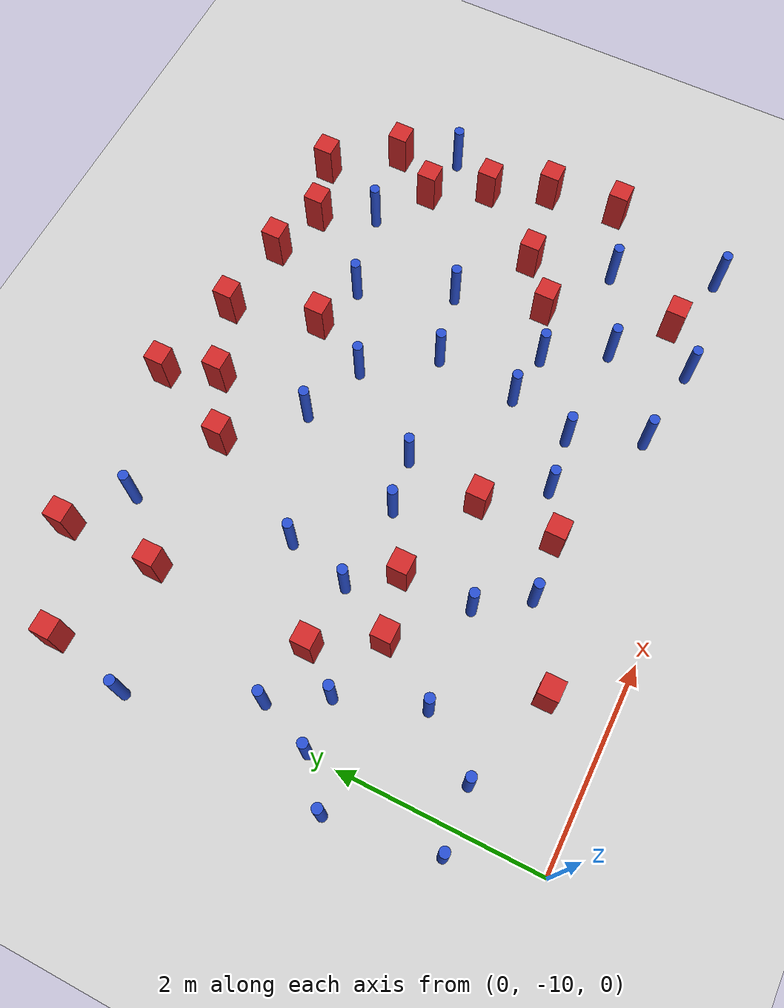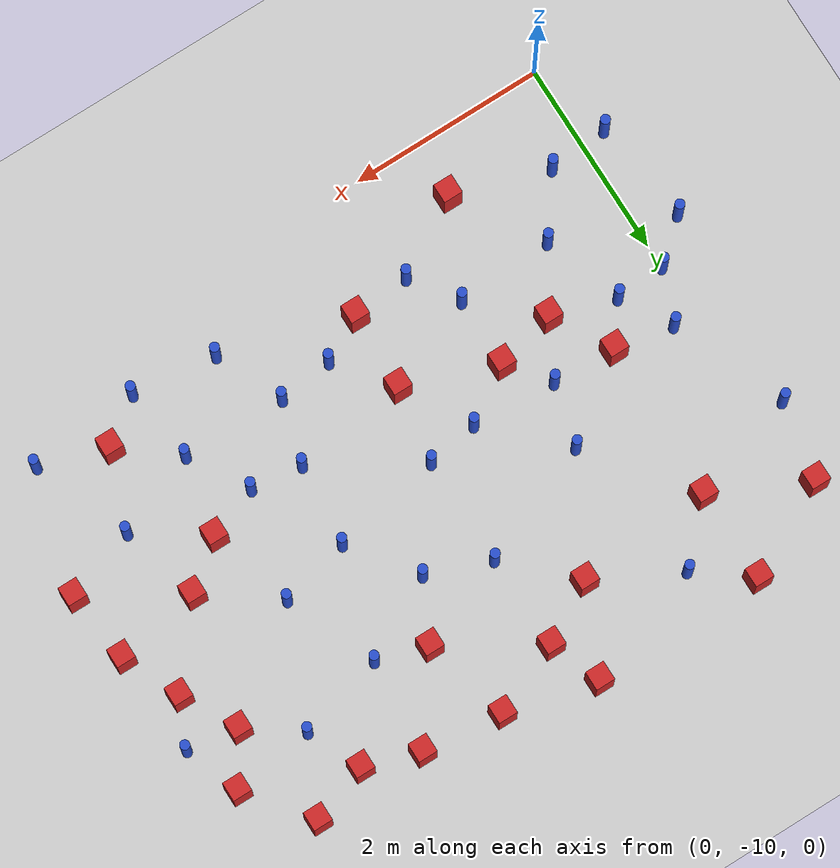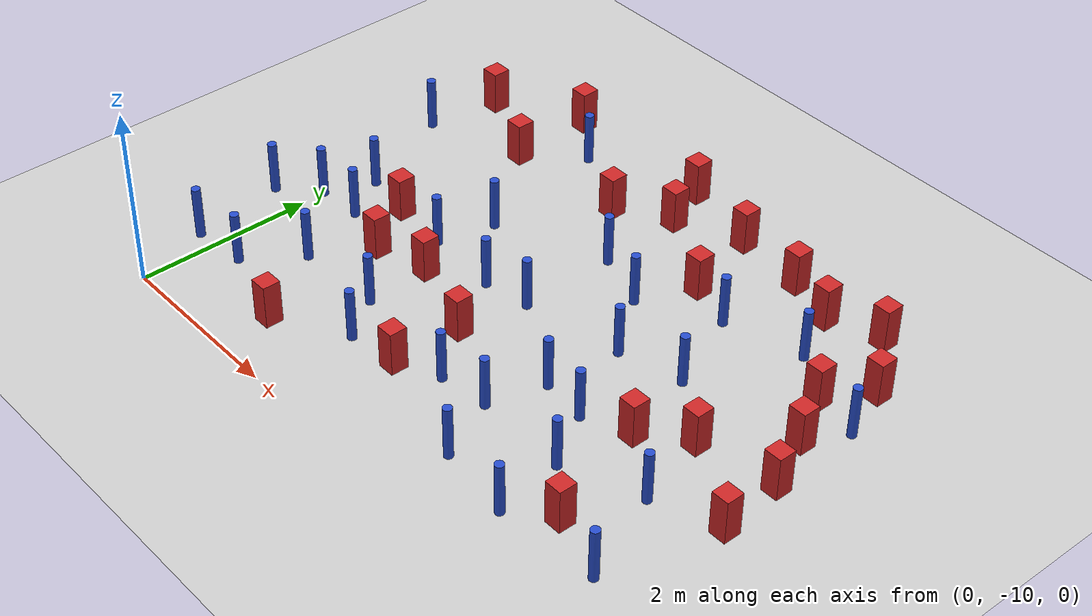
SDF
<sdf version="1.6">
 <world name="default">
  <model name="ground_plane">
   <static>1</static>
   <link name="link">
    <collision name="collision">
     <geometry><plane><normal>0 0 1</normal><size>100 100</size></plane></geometry>
     <surface><friction><ode><mu>100</mu><mu2>50</mu2></ode></friction></surface>
    </collision>
    <visual name="visual">
     <cast_shadows>0</cast_shadows>
     <geometry><plane><normal>0 0 1</normal><size>100 100</size></plane></geometry>
     <material>
      <ambient>1.0 1.0 1.0 1.0</ambient>
      <diffuse>0.8 0.8 0.8 1.0</diffuse>
      <specular>0.01 0.01 0.01 1.000000</specular>
     </material>
    </visual>
   </link>
  </model>
  <model name="square_post_obstacle3">
   <static>true</static>
   <pose>2.2582333432 -5.58475907966 -6.11067671241e-07 -5.50515727128e-06 -8.79689657224e-07 2.37013304536e-05</pose>
   <link name="link">
    <pose>0 0 0.25 0 -0 0</pose>
    <inertial>
     <mass>100</mass>
     <inertia>
      <ixx>0.166667</ixx>
      <ixy>0</ixy>
      <ixz>0</ixz>
      <iyy>0.166667</iyy>
      <iyz>0</iyz>
      <izz>0.166667</izz>
     </inertia>
    </inertial>
    <collision name="collision"><geometry><box><size>.2 .2 .5</size></box></geometry></collision>
    <visual name="visual">
     <geometry><box><size>.2 .2 .5</size></box></geometry>
     <material>
      <script><name>Gazebo/Red</name><uri>file://media/materials/scripts/gazebo.material</uri></script>
     </material>
    </visual>
   </link>
  </model>
  <model name="pole_obstacle9">
   <static>true</static>
   <pose>-0.391706613533 -8.08337775181 -9.47619616065e-06 5.49618799737e-07 2.36310414031e-07 -1.55090534818e-07</pose>
   <link name="link">
    <pose>0 0 0.3 0 -0 0</pose>
    <inertial>
     <mass>1</mass>
     <inertia><ixx>0.145833</ixx><ixy>0</ixy><ixz>0</ixz><iyy>0.145833</iyy><iyz>0</iyz><izz>0.125</izz></inertia>
    </inertial>
    <collision name="collision">
     <geometry><cylinder><radius>0.05</radius><length>.6</length></cylinder></geometry>
    </collision>
    <visual name="visual">
     <geometry><cylinder><radius>0.05</radius><length>.6</length></cylinder></geometry>
     <material>
      <script><name>Gazebo/Blue</name><uri>file://media/materials/scripts/gazebo.material</uri></script>
     </material>
    </visual>
   </link>
  </model>
  <model name="pole_obstacle14">
   <static>true</static>
   <pose>4.04743545266 -9.25883310238 -9.47619616065e-06 5.49618799737e-07 2.36310414062e-07 -1.55090534799e-07</pose>
   <link name="link">
    <pose>0 0 0.3 0 -0 0</pose>
    <inertial>
     <mass>1</mass>
     <inertia><ixx>0.145833</ixx><ixy>0</ixy><ixz>0</ixz><iyy>0.145833</iyy><iyz>0</iyz><izz>0.125</izz></inertia>
    </inertial>
    <collision name="collision">
     <geometry><cylinder><radius>0.05</radius><length>.6</length></cylinder></geometry>
    </collision>
    <visual name="visual">
     <geometry><cylinder><radius>0.05</radius><length>.6</length></cylinder></geometry>
     <material>
      <script><name>Gazebo/Blue</name><uri>file://media/materials/scripts/gazebo.material</uri></script>
     </material>
    </visual>
   </link>
  </model>
  <model name="pole_obstacle17">
   <static>true</static>
   <pose>0.805625796056 -8.5106215009 -9.47619616065e-06 5.49618799737e-07 2.36310414038e-07 -1.55090534813e-07</pose>
   <link name="link">
    <pose>0 0 0.3 0 -0 0</pose>
    <inertial>
     <mass>1</mass>
     <inertia><ixx>0.145833</ixx><ixy>0</ixy><ixz>0</ixz><iyy>0.145833</iyy><iyz>0</iyz><izz>0.125</izz></inertia>
    </inertial>
    <collision name="collision">
     <geometry><cylinder><radius>0.05</radius><length>.6</length></cylinder></geometry>
    </collision>
    <visual name="visual">
     <geometry><cylinder><radius>0.05</radius><length>.6</length></cylinder></geometry>
     <material>
      <script><name>Gazebo/Blue</name><uri>file://media/materials/scripts/gazebo.material</uri></script>
     </material>
    </visual>
   </link>
  </model>
  <model name="square_post_obstacle13">
   <static>true</static>
   <pose>2.64894658065 -4.7162178842 -6.11067671241e-07 -5.50515727128e-06 -8.79689657224e-07 2.37013304536e-05</pose>
   <link name="link">
    <pose>0 0 0.25 0 -0 0</pose>
    <inertial>
     <mass>100</mass>
     <inertia>
      <ixx>0.166667</ixx>
      <ixy>0</ixy>
      <ixz>0</ixz>
      <iyy>0.166667</iyy>
      <iyz>0</iyz>
      <izz>0.166667</izz>
     </inertia>
    </inertial>
    <collision name="collision"><geometry><box><size>.2 .2 .5</size></box></geometry></collision>
    <visual name="visual">
     <geometry><box><size>.2 .2 .5</size></box></geometry>
     <material>
      <script><name>Gazebo/Red</name><uri>file://media/materials/scripts/gazebo.material</uri></script>
     </material>
    </visual>
   </link>
  </model>
  <model name="square_post_obstacle19">
   <static>true</static>
   <pose>4.40538104166 -5.0287908586 -6.11067671241e-07 -5.50515727128e-06 -8.79689657224e-07 2.37013304536e-05</pose>
   <link name="link">
    <pose>0 0 0.25 0 -0 0</pose>
    <inertial>
     <mass>100</mass>
     <inertia>
      <ixx>0.166667</ixx>
      <ixy>0</ixy>
      <ixz>0</ixz>
      <iyy>0.166667</iyy>
      <iyz>0</iyz>
      <izz>0.166667</izz>
     </inertia>
    </inertial>
    <collision name="collision"><geometry><box><size>.2 .2 .5</size></box></geometry></collision>
    <visual name="visual">
     <geometry><box><size>.2 .2 .5</size></box></geometry>
     <material>
      <script><name>Gazebo/Red</name><uri>file://media/materials/scripts/gazebo.material</uri></script>
     </material>
    </visual>
   </link>
  </model>
  <model name="pole_obstacle30">
   <static>true</static>
   <pose>0.0104346098227 -7.73148171372 -9.47619616065e-06 5.49618799737e-07 2.36310414066e-07 -1.55090534798e-07</pose>
   <link name="link">
    <pose>0 0 0.3 0 -0 0</pose>
    <inertial>
     <mass>1</mass>
     <inertia><ixx>0.145833</ixx><ixy>0</ixy><ixz>0</ixz><iyy>0.145833</iyy><iyz>0</iyz><izz>0.125</izz></inertia>
    </inertial>
    <collision name="collision">
     <geometry><cylinder><radius>0.05</radius><length>.6</length></cylinder></geometry>
    </collision>
    <visual name="visual">
     <geometry><cylinder><radius>0.05</radius><length>.6</length></cylinder></geometry>
     <material>
      <script><name>Gazebo/Blue</name><uri>file://media/materials/scripts/gazebo.material</uri></script>
     </material>
    </visual>
   </link>
  </model>
  <model name="pole_obstacle31">
   <static>true</static>
   <pose>2.34227794499 -7.39321426826 -9.47619616065e-06 5.49618799738e-07 2.3631041406e-07 -1.55090534801e-07</pose>
   <link name="link">
    <pose>0 0 0.3 0 -0 0</pose>
    <inertial>
     <mass>1</mass>
     <inertia><ixx>0.145833</ixx><ixy>0</ixy><ixz>0</ixz><iyy>0.145833</iyy><iyz>0</iyz><izz>0.125</izz></inertia>
    </inertial>
    <collision name="collision">
     <geometry><cylinder><radius>0.05</radius><length>.6</length></cylinder></geometry>
    </collision>
    <visual name="visual">
     <geometry><cylinder><radius>0.05</radius><length>.6</length></cylinder></geometry>
     <material>
      <script><name>Gazebo/Blue</name><uri>file://media/materials/scripts/gazebo.material</uri></script>
     </material>
    </visual>
   </link>
  </model>
  <model name="square_post_obstacle24">
   <static>true</static>
   <pose>0.871789693514 -5.68705379357 -6.11067671241e-07 -5.50515727128e-06 -8.79689657224e-07 2.37013304536e-05</pose>
   <link name="link">
    <pose>0 0 0.25 0 -0 0</pose>
    <inertial>
     <mass>100</mass>
     <inertia>
      <ixx>0.166667</ixx>
      <ixy>0</ixy>
      <ixz>0</ixz>
      <iyy>0.166667</iyy>
      <iyz>0</iyz>
      <izz>0.166667</izz>
     </inertia>
    </inertial>
    <collision name="collision"><geometry><box><size>.2 .2 .5</size></box></geometry></collision>
    <visual name="visual">
     <geometry><box><size>.2 .2 .5</size></box></geometry>
     <material>
      <script><name>Gazebo/Red</name><uri>file://media/materials/scripts/gazebo.material</uri></script>
     </material>
    </visual>
   </link>
  </model>
  <model name="pole_obstacle38">
   <static>true</static>
   <pose>4.91052521353 -9.36683698893 -9.47619616065e-06 5.49618799737e-07 2.36310414065e-07 -1.55090534796e-07</pose>
   <link name="link">
    <pose>0 0 0.3 0 -0 0</pose>
    <inertial>
     <mass>1</mass>
     <inertia><ixx>0.145833</ixx><ixy>0</ixy><ixz>0</ixz><iyy>0.145833</iyy><iyz>0</iyz><izz>0.125</izz></inertia>
    </inertial>
    <collision name="collision">
     <geometry><cylinder><radius>0.05</radius><length>.6</length></cylinder></geometry>
    </collision>
    <visual name="visual">
     <geometry><cylinder><radius>0.05</radius><length>.6</length></cylinder></geometry>
     <material>
      <script><name>Gazebo/Blue</name><uri>file://media/materials/scripts/gazebo.material</uri></script>
     </material>
    </visual>
   </link>
  </model>
  <model name="pole_obstacle39">
   <static>true</static>
   <pose>3.51686870457 -6.43644330084 -9.47619616065e-06 5.49618799738e-07 2.3631041406e-07 -1.55090534801e-07</pose>
   <link name="link">
    <pose>0 0 0.3 0 -0 0</pose>
    <inertial>
     <mass>1</mass>
     <inertia><ixx>0.145833</ixx><ixy>0</ixy><ixz>0</ixz><iyy>0.145833</iyy><iyz>0</iyz><izz>0.125</izz></inertia>
    </inertial>
    <collision name="collision">
     <geometry><cylinder><radius>0.05</radius><length>.6</length></cylinder></geometry>
    </collision>
    <visual name="visual">
     <geometry><cylinder><radius>0.05</radius><length>.6</length></cylinder></geometry>
     <material>
      <script><name>Gazebo/Blue</name><uri>file://media/materials/scripts/gazebo.material</uri></script>
     </material>
    </visual>
   </link>
  </model>
  <model name="pole_obstacle44">
   <static>true</static>
   <pose>6.04462200495 -9.25837924738 -9.47619616065e-06 5.49618799737e-07 2.36310414065e-07 -1.55090534796e-07</pose>
   <link name="link">
    <pose>0 0 0.3 0 -0 0</pose>
    <inertial>
     <mass>1</mass>
     <inertia><ixx>0.145833</ixx><ixy>0</ixy><ixz>0</ixz><iyy>0.145833</iyy><iyz>0</iyz><izz>0.125</izz></inertia>
    </inertial>
    <collision name="collision">
     <geometry><cylinder><radius>0.05</radius><length>.6</length></cylinder></geometry>
    </collision>
    <visual name="visual">
     <geometry><cylinder><radius>0.05</radius><length>.6</length></cylinder></geometry>
     <material>
      <script><name>Gazebo/Blue</name><uri>file://media/materials/scripts/gazebo.material</uri></script>
     </material>
    </visual>
   </link>
  </model>
  <model name="pole_obstacle46">
   <static>true</static>
   <pose>3.99751945048 -7.09054645801 -9.47619616065e-06 5.49618799737e-07 2.36310414049e-07 -1.55090534808e-07</pose>
   <link name="link">
    <pose>0 0 0.3 0 -0 0</pose>
    <inertial>
     <mass>1</mass>
     <inertia><ixx>0.145833</ixx><ixy>0</ixy><ixz>0</ixz><iyy>0.145833</iyy><iyz>0</iyz><izz>0.125</izz></inertia>
    </inertial>
    <collision name="collision">
     <geometry><cylinder><radius>0.05</radius><length>.6</length></cylinder></geometry>
    </collision>
    <visual name="visual">
     <geometry><cylinder><radius>0.05</radius><length>.6</length></cylinder></geometry>
     <material>
      <script><name>Gazebo/Blue</name><uri>file://media/materials/scripts/gazebo.material</uri></script>
     </material>
    </visual>
   </link>
  </model>
  <model name="pole_obstacle47">
   <static>true</static>
   <pose>4.79923511579 -8.59081502515 -9.47619616065e-06 5.49618799737e-07 2.36310414065e-07 -1.55090534796e-07</pose>
   <link name="link">
    <pose>0 0 0.3 0 -0 0</pose>
    <inertial>
     <mass>1</mass>
     <inertia><ixx>0.145833</ixx><ixy>0</ixy><ixz>0</ixz><iyy>0.145833</iyy><iyz>0</iyz><izz>0.125</izz></inertia>
    </inertial>
    <collision name="collision">
     <geometry><cylinder><radius>0.05</radius><length>.6</length></cylinder></geometry>
    </collision>
    <visual name="visual">
     <geometry><cylinder><radius>0.05</radius><length>.6</length></cylinder></geometry>
     <material>
      <script><name>Gazebo/Blue</name><uri>file://media/materials/scripts/gazebo.material</uri></script>
     </material>
    </visual>
   </link>
  </model>
  <model name="pole_obstacle55">
   <static>true</static>
   <pose>-0.238329707888 -9.14730622742 -9.47619616065e-06 5.49618799737e-07 2.36310414035e-07 -1.55090534816e-07</pose>
   <link name="link">
    <pose>0 0 0.3 0 -0 0</pose>
    <inertial>
     <mass>1</mass>
     <inertia><ixx>0.145833</ixx><ixy>0</ixy><ixz>0</ixz><iyy>0.145833</iyy><iyz>0</iyz><izz>0.125</izz></inertia>
    </inertial>
    <collision name="collision">
     <geometry><cylinder><radius>0.05</radius><length>.6</length></cylinder></geometry>
    </collision>
    <visual name="visual">
     <geometry><cylinder><radius>0.05</radius><length>.6</length></cylinder></geometry>
     <material>
      <script><name>Gazebo/Blue</name><uri>file://media/materials/scripts/gazebo.material</uri></script>
     </material>
    </visual>
   </link>
  </model>
  <model name="square_post_obstacle43">
   <static>true</static>
   <pose>1.18824249858 -7.89783714019 -6.11067671241e-07 -5.50515727128e-06 -8.79689657224e-07 2.37013304536e-05</pose>
   <link name="link">
    <pose>0 0 0.25 0 -0 0</pose>
    <inertial>
     <mass>100</mass>
     <inertia>
      <ixx>0.166667</ixx>
      <ixy>0</ixy>
      <ixz>0</ixz>
      <iyy>0.166667</iyy>
      <iyz>0</iyz>
      <izz>0.166667</izz>
     </inertia>
    </inertial>
    <collision name="collision"><geometry><box><size>.2 .2 .5</size></box></geometry></collision>
    <visual name="visual">
     <geometry><box><size>.2 .2 .5</size></box></geometry>
     <material>
      <script><name>Gazebo/Red</name><uri>file://media/materials/scripts/gazebo.material</uri></script>
     </material>
    </visual>
   </link>
  </model>
  <model name="pole_obstacle61">
   <static>true</static>
   <pose>2.12692938519 -8.93378575849 -9.4761961606e-06 5.49618799729e-07 2.36310414e-07 -1.55090534824e-07</pose>
   <link name="link">
    <pose>0 0 0.3 0 -0 0</pose>
    <inertial>
     <mass>1</mass>
     <inertia><ixx>0.145833</ixx><ixy>0</ixy><ixz>0</ixz><iyy>0.145833</iyy><iyz>0</iyz><izz>0.125</izz></inertia>
    </inertial>
    <collision name="collision">
     <geometry><cylinder><radius>0.05</radius><length>.6</length></cylinder></geometry>
    </collision>
    <visual name="visual">
     <geometry><cylinder><radius>0.05</radius><length>.6</length></cylinder></geometry>
     <material>
      <script><name>Gazebo/Blue</name><uri>file://media/materials/scripts/gazebo.material</uri></script>
     </material>
    </visual>
   </link>
  </model>
  <model name="square_post_obstacle49">
   <static>true</static>
   <pose>-0.0839355214253 -5.23233863861 -6.11067671241e-07 -5.50515727128e-06 -8.79689657224e-07 2.37013304536e-05</pose>
   <link name="link">
    <pose>0 0 0.25 0 -0 0</pose>
    <inertial>
     <mass>100</mass>
     <inertia>
      <ixx>0.166667</ixx>
      <ixy>0</ixy>
      <ixz>0</ixz>
      <iyy>0.166667</iyy>
      <iyz>0</iyz>
      <izz>0.166667</izz>
     </inertia>
    </inertial>
    <collision name="collision"><geometry><box><size>.2 .2 .5</size></box></geometry></collision>
    <visual name="visual">
     <geometry><box><size>.2 .2 .5</size></box></geometry>
     <material>
      <script><name>Gazebo/Red</name><uri>file://media/materials/scripts/gazebo.material</uri></script>
     </material>
    </visual>
   </link>
  </model>
  <model name="pole_obstacle66">
   <static>true</static>
   <pose>1.64097257661 -6.69781636108 -9.47619616065e-06 5.49618799737e-07 2.36310414061e-07 -1.550905348e-07</pose>
   <link name="link">
    <pose>0 0 0.3 0 -0 0</pose>
    <inertial>
     <mass>1</mass>
     <inertia><ixx>0.145833</ixx><ixy>0</ixy><ixz>0</ixz><iyy>0.145833</iyy><iyz>0</iyz><izz>0.125</izz></inertia>
    </inertial>
    <collision name="collision">
     <geometry><cylinder><radius>0.05</radius><length>.6</length></cylinder></geometry>
    </collision>
    <visual name="visual">
     <geometry><cylinder><radius>0.05</radius><length>.6</length></cylinder></geometry>
     <material>
      <script><name>Gazebo/Blue</name><uri>file://media/materials/scripts/gazebo.material</uri></script>
     </material>
    </visual>
   </link>
  </model>
  <model name="square_post_obstacle55">
   <static>true</static>
   <pose>6.30958315143 -7.27684234479 -6.11067671241e-07 -5.50515727128e-06 -8.79689657224e-07 2.37013304536e-05</pose>
   <link name="link">
    <pose>0 0 0.25 0 -0 0</pose>
    <inertial>
     <mass>100</mass>
     <inertia>
      <ixx>0.166667</ixx>
      <ixy>0</ixy>
      <ixz>0</ixz>
      <iyy>0.166667</iyy>
      <iyz>0</iyz>
      <izz>0.166667</izz>
     </inertia>
    </inertial>
    <collision name="collision"><geometry><box><size>.2 .2 .5</size></box></geometry></collision>
    <visual name="visual">
     <geometry><box><size>.2 .2 .5</size></box></geometry>
     <material>
      <script><name>Gazebo/Red</name><uri>file://media/materials/scripts/gazebo.material</uri></script>
     </material>
    </visual>
   </link>
  </model>
  <model name="square_post_obstacle63">
   <static>true</static>
   <pose>6.04624281606 -6.6855878257 -6.11067671241e-07 -5.50515727128e-06 -8.79689657224e-07 2.37013304536e-05</pose>
   <link name="link">
    <pose>0 0 0.25 0 -0 0</pose>
    <inertial>
     <mass>100</mass>
     <inertia>
      <ixx>0.166667</ixx>
      <ixy>0</ixy>
      <ixz>0</ixz>
      <iyy>0.166667</iyy>
      <iyz>0</iyz>
      <izz>0.166667</izz>
     </inertia>
    </inertial>
    <collision name="collision"><geometry><box><size>.2 .2 .5</size></box></geometry></collision>
    <visual name="visual">
     <geometry><box><size>.2 .2 .5</size></box></geometry>
     <material>
      <script><name>Gazebo/Red</name><uri>file://media/materials/scripts/gazebo.material</uri></script>
     </material>
    </visual>
   </link>
  </model>
  <model name="pole_obstacle76">
   <static>true</static>
   <pose>3.74089223832 -8.56823287844 -9.4761961606e-06 5.49618799729e-07 2.36310414e-07 -1.55090534824e-07</pose>
   <link name="link">
    <pose>0 0 0.3 0 -0 0</pose>
    <inertial>
     <mass>1</mass>
     <inertia><ixx>0.145833</ixx><ixy>0</ixy><ixz>0</ixz><iyy>0.145833</iyy><iyz>0</iyz><izz>0.125</izz></inertia>
    </inertial>
    <collision name="collision">
     <geometry><cylinder><radius>0.05</radius><length>.6</length></cylinder></geometry>
    </collision>
    <visual name="visual">
     <geometry><cylinder><radius>0.05</radius><length>.6</length></cylinder></geometry>
     <material>
      <script><name>Gazebo/Blue</name><uri>file://media/materials/scripts/gazebo.material</uri></script>
     </material>
    </visual>
   </link>
  </model>
  <model name="pole_obstacle84">
   <static>true</static>
   <pose>5.65385907824 -8.26078857095 -9.47619616065e-06 5.49618799737e-07 2.36310414065e-07 -1.55090534796e-07</pose>
   <link name="link">
    <pose>0 0 0.3 0 -0 0</pose>
    <inertial>
     <mass>1</mass>
     <inertia><ixx>0.145833</ixx><ixy>0</ixy><ixz>0</ixz><iyy>0.145833</iyy><iyz>0</iyz><izz>0.125</izz></inertia>
    </inertial>
    <collision name="collision">
     <geometry><cylinder><radius>0.05</radius><length>.6</length></cylinder></geometry>
    </collision>
    <visual name="visual">
     <geometry><cylinder><radius>0.05</radius><length>.6</length></cylinder></geometry>
     <material>
      <script><name>Gazebo/Blue</name><uri>file://media/materials/scripts/gazebo.material</uri></script>
     </material>
    </visual>
   </link>
  </model>
  <model name="square_post_obstacle77">
   <static>true</static>
   <pose>1.80397118284 -7.74964769738 -6.11067671241e-07 -5.50515727128e-06 -8.79689657224e-07 2.37013304536e-05</pose>
   <link name="link">
    <pose>0 0 0.25 0 -0 0</pose>
    <inertial>
     <mass>100</mass>
     <inertia>
      <ixx>0.166667</ixx>
      <ixy>0</ixy>
      <ixz>0</ixz>
      <iyy>0.166667</iyy>
      <iyz>0</iyz>
      <izz>0.166667</izz>
     </inertia>
    </inertial>
    <collision name="collision"><geometry><box><size>.2 .2 .5</size></box></geometry></collision>
    <visual name="visual">
     <geometry><box><size>.2 .2 .5</size></box></geometry>
     <material>
      <script><name>Gazebo/Red</name><uri>file://media/materials/scripts/gazebo.material</uri></script>
     </material>
    </visual>
   </link>
  </model>
  <model name="pole_obstacle97">
   <static>true</static>
   <pose>4.71613714829 -6.91655824658 -9.47619616065e-06 5.49618799737e-07 2.36310414037e-07 -1.55090534814e-07</pose>
   <link name="link">
    <pose>0 0 0.3 0 -0 0</pose>
    <inertial>
     <mass>1</mass>
     <inertia><ixx>0.145833</ixx><ixy>0</ixy><ixz>0</ixz><iyy>0.145833</iyy><iyz>0</iyz><izz>0.125</izz></inertia>
    </inertial>
    <collision name="collision">
     <geometry><cylinder><radius>0.05</radius><length>.6</length></cylinder></geometry>
    </collision>
    <visual name="visual">
     <geometry><cylinder><radius>0.05</radius><length>.6</length></cylinder></geometry>
     <material>
      <script><name>Gazebo/Blue</name><uri>file://media/materials/scripts/gazebo.material</uri></script>
     </material>
    </visual>
   </link>
  </model>
  <model name="pole_obstacle98">
   <static>true</static>
   <pose>1.38795583454 -5.14126545776 -9.47619616065e-06 5.49618799737e-07 2.36310414061e-07 -1.550905348e-07</pose>
   <link name="link">
    <pose>0 0 0.3 0 -0 0</pose>
    <inertial>
     <mass>1</mass>
     <inertia><ixx>0.145833</ixx><ixy>0</ixy><ixz>0</ixz><iyy>0.145833</iyy><iyz>0</iyz><izz>0.125</izz></inertia>
    </inertial>
    <collision name="collision">
     <geometry><cylinder><radius>0.05</radius><length>.6</length></cylinder></geometry>
    </collision>
    <visual name="visual">
     <geometry><cylinder><radius>0.05</radius><length>.6</length></cylinder></geometry>
     <material>
      <script><name>Gazebo/Blue</name><uri>file://media/materials/scripts/gazebo.material</uri></script>
     </material>
    </visual>
   </link>
  </model>
  <model name="square_post_obstacle96">
   <static>true</static>
   <pose>6.05438351572 -5.64040242873 -6.11067671241e-07 -5.50515727128e-06 -8.79689657224e-07 2.37013304536e-05</pose>
   <link name="link">
    <pose>0 0 0.25 0 -0 0</pose>
    <inertial>
     <mass>100</mass>
     <inertia>
      <ixx>0.166667</ixx>
      <ixy>0</ixy>
      <ixz>0</ixz>
      <iyy>0.166667</iyy>
      <iyz>0</iyz>
      <izz>0.166667</izz>
     </inertia>
    </inertial>
    <collision name="collision"><geometry><box><size>.2 .2 .5</size></box></geometry></collision>
    <visual name="visual">
     <geometry><box><size>.2 .2 .5</size></box></geometry>
     <material>
      <script><name>Gazebo/Red</name><uri>file://media/materials/scripts/gazebo.material</uri></script>
     </material>
    </visual>
   </link>
  </model>
  <model name="pole_obstacle103">
   <static>true</static>
   <pose>0.382231596393 -9.09187167226 -9.47619616065e-06 5.49618799737e-07 2.36310414031e-07 -1.55090534818e-07</pose>
   <link name="link">
    <pose>0 0 0.3 0 -0 0</pose>
    <inertial>
     <mass>1</mass>
     <inertia><ixx>0.145833</ixx><ixy>0</ixy><ixz>0</ixz><iyy>0.145833</iyy><iyz>0</iyz><izz>0.125</izz></inertia>
    </inertial>
    <collision name="collision">
     <geometry><cylinder><radius>0.05</radius><length>.6</length></cylinder></geometry>
    </collision>
    <visual name="visual">
     <geometry><cylinder><radius>0.05</radius><length>.6</length></cylinder></geometry>
     <material>
      <script><name>Gazebo/Blue</name><uri>file://media/materials/scripts/gazebo.material</uri></script>
     </material>
    </visual>
   </link>
  </model>
  <model name="square_post_obstacle98">
   <static>true</static>
   <pose>3.81670410627 -5.83376396966 -6.11067671241e-07 -5.50515727128e-06 -8.79689657224e-07 2.37013304536e-05</pose>
   <link name="link">
    <pose>0 0 0.25 0 -0 0</pose>
    <inertial>
     <mass>100</mass>
     <inertia>
      <ixx>0.166667</ixx>
      <ixy>0</ixy>
      <ixz>0</ixz>
      <iyy>0.166667</iyy>
      <iyz>0</iyz>
      <izz>0.166667</izz>
     </inertia>
    </inertial>
    <collision name="collision"><geometry><box><size>.2 .2 .5</size></box></geometry></collision>
    <visual name="visual">
     <geometry><box><size>.2 .2 .5</size></box></geometry>
     <material>
      <script><name>Gazebo/Red</name><uri>file://media/materials/scripts/gazebo.material</uri></script>
     </material>
    </visual>
   </link>
  </model>
  <model name="square_post_obstacle102">
   <static>true</static>
   <pose>0.867061746194 -4.7401752593 -6.11067671241e-07 -5.50515727128e-06 -8.79689657224e-07 2.37013304536e-05</pose>
   <link name="link">
    <pose>0 0 0.25 0 -0 0</pose>
    <inertial>
     <mass>100</mass>
     <inertia>
      <ixx>0.166667</ixx>
      <ixy>0</ixy>
      <ixz>0</ixz>
      <iyy>0.166667</iyy>
      <iyz>0</iyz>
      <izz>0.166667</izz>
     </inertia>
    </inertial>
    <collision name="collision"><geometry><box><size>.2 .2 .5</size></box></geometry></collision>
    <visual name="visual">
     <geometry><box><size>.2 .2 .5</size></box></geometry>
     <material>
      <script><name>Gazebo/Red</name><uri>file://media/materials/scripts/gazebo.material</uri></script>
     </material>
    </visual>
   </link>
  </model>
  <model name="pole_obstacle115">
   <static>true</static>
   <pose>-0.252000865377 -6.03092486709 -9.47619616065e-06 5.49618799738e-07 2.36310414067e-07 -1.55090534795e-07</pose>
   <link name="link">
    <pose>0 0 0.3 0 -0 0</pose>
    <inertial>
     <mass>1</mass>
     <inertia><ixx>0.145833</ixx><ixy>0</ixy><ixz>0</ixz><iyy>0.145833</iyy><iyz>0</iyz><izz>0.125</izz></inertia>
    </inertial>
    <collision name="collision">
     <geometry><cylinder><radius>0.05</radius><length>.6</length></cylinder></geometry>
    </collision>
    <visual name="visual">
     <geometry><cylinder><radius>0.05</radius><length>.6</length></cylinder></geometry>
     <material>
      <script><name>Gazebo/Blue</name><uri>file://media/materials/scripts/gazebo.material</uri></script>
     </material>
    </visual>
   </link>
  </model>
  <model name="square_post_obstacle115">
   <static>true</static>
   <pose>5.56865045824 -5.00675293557 -6.11067671241e-07 -5.50515727128e-06 -8.79689657224e-07 2.37013304536e-05</pose>
   <link name="link">
    <pose>0 0 0.25 0 -0 0</pose>
    <inertial>
     <mass>100</mass>
     <inertia>
      <ixx>0.166667</ixx>
      <ixy>0</ixy>
      <ixz>0</ixz>
      <iyy>0.166667</iyy>
      <iyz>0</iyz>
      <izz>0.166667</izz>
     </inertia>
    </inertial>
    <collision name="collision"><geometry><box><size>.2 .2 .5</size></box></geometry></collision>
    <visual name="visual">
     <geometry><box><size>.2 .2 .5</size></box></geometry>
     <material>
      <script><name>Gazebo/Red</name><uri>file://media/materials/scripts/gazebo.material</uri></script>
     </material>
    </visual>
   </link>
  </model>
  <model name="pole_obstacle116">
   <static>true</static>
   <pose>1.79947077806 -8.46317553147 -9.47619616065e-06 5.49618799737e-07 2.36310414046e-07 -1.55090534809e-07</pose>
   <link name="link">
    <pose>0 0 0.3 0 -0 0</pose>
    <inertial>
     <mass>1</mass>
     <inertia><ixx>0.145833</ixx><ixy>0</ixy><ixz>0</ixz><iyy>0.145833</iyy><iyz>0</iyz><izz>0.125</izz></inertia>
    </inertial>
    <collision name="collision">
     <geometry><cylinder><radius>0.05</radius><length>.6</length></cylinder></geometry>
    </collision>
    <visual name="visual">
     <geometry><cylinder><radius>0.05</radius><length>.6</length></cylinder></geometry>
     <material>
      <script><name>Gazebo/Blue</name><uri>file://media/materials/scripts/gazebo.material</uri></script>
     </material>
    </visual>
   </link>
  </model>
  <model name="pole_obstacle127">
   <static>true</static>
   <pose>0.224178084463 -7.19129525087 -9.47619616065e-06 5.49618799737e-07 2.36310414069e-07 -1.55090534795e-07</pose>
   <link name="link">
    <pose>0 0 0.3 0 -0 0</pose>
    <inertial>
     <mass>1</mass>
     <inertia><ixx>0.145833</ixx><ixy>0</ixy><ixz>0</ixz><iyy>0.145833</iyy><iyz>0</iyz><izz>0.125</izz></inertia>
    </inertial>
    <collision name="collision">
     <geometry><cylinder><radius>0.05</radius><length>.6</length></cylinder></geometry>
    </collision>
    <visual name="visual">
     <geometry><cylinder><radius>0.05</radius><length>.6</length></cylinder></geometry>
     <material>
      <script><name>Gazebo/Blue</name><uri>file://media/materials/scripts/gazebo.material</uri></script>
     </material>
    </visual>
   </link>
  </model>
  <model name="square_post_obstacle123">
   <static>true</static>
   <pose>6.38836232377 -8.01175545527 -6.11067671241e-07 -5.50515727128e-06 -8.79689657224e-07 2.37013304536e-05</pose>
   <link name="link">
    <pose>0 0 0.25 0 -0 0</pose>
    <inertial>
     <mass>100</mass>
     <inertia>
      <ixx>0.166667</ixx>
      <ixy>0</ixy>
      <ixz>0</ixz>
      <iyy>0.166667</iyy>
      <iyz>0</iyz>
      <izz>0.166667</izz>
     </inertia>
    </inertial>
    <collision name="collision"><geometry><box><size>.2 .2 .5</size></box></geometry></collision>
    <visual name="visual">
     <geometry><box><size>.2 .2 .5</size></box></geometry>
     <material>
      <script><name>Gazebo/Red</name><uri>file://media/materials/scripts/gazebo.material</uri></script>
     </material>
    </visual>
   </link>
  </model>
  <model name="square_post_obstacle131">
   <static>true</static>
   <pose>5.74206814708 -6.13115475987 -6.11067671241e-07 -5.50515727128e-06 -8.79689657224e-07 2.37013304536e-05</pose>
   <link name="link">
    <pose>0 0 0.25 0 -0 0</pose>
    <inertial>
     <mass>100</mass>
     <inertia>
      <ixx>0.166667</ixx>
      <ixy>0</ixy>
      <ixz>0</ixz>
      <iyy>0.166667</iyy>
      <iyz>0</iyz>
      <izz>0.166667</izz>
     </inertia>
    </inertial>
    <collision name="collision"><geometry><box><size>.2 .2 .5</size></box></geometry></collision>
    <visual name="visual">
     <geometry><box><size>.2 .2 .5</size></box></geometry>
     <material>
      <script><name>Gazebo/Red</name><uri>file://media/materials/scripts/gazebo.material</uri></script>
     </material>
    </visual>
   </link>
  </model>
  <model name="pole_obstacle139">
   <static>true</static>
   <pose>3.17593129395 -8.63910283971 -9.4761961606e-06 5.49618799729e-07 2.36310414e-07 -1.55090534824e-07</pose>
   <link name="link">
    <pose>0 0 0.3 0 -0 0</pose>
    <inertial>
     <mass>1</mass>
     <inertia><ixx>0.145833</ixx><ixy>0</ixy><ixz>0</ixz><iyy>0.145833</iyy><iyz>0</iyz><izz>0.125</izz></inertia>
    </inertial>
    <collision name="collision">
     <geometry><cylinder><radius>0.05</radius><length>.6</length></cylinder></geometry>
    </collision>
    <visual name="visual">
     <geometry><cylinder><radius>0.05</radius><length>.6</length></cylinder></geometry>
     <material>
      <script><name>Gazebo/Blue</name><uri>file://media/materials/scripts/gazebo.material</uri></script>
     </material>
    </visual>
   </link>
  </model>
  <model name="square_post_obstacle135">
   <static>true</static>
   <pose>5.43382971144 -7.43649612337 -6.11067671241e-07 -5.50515727128e-06 -8.79689657224e-07 2.37013304536e-05</pose>
   <link name="link">
    <pose>0 0 0.25 0 -0 0</pose>
    <inertial>
     <mass>100</mass>
     <inertia>
      <ixx>0.166667</ixx>
      <ixy>0</ixy>
      <ixz>0</ixz>
      <iyy>0.166667</iyy>
      <iyz>0</iyz>
      <izz>0.166667</izz>
     </inertia>
    </inertial>
    <collision name="collision"><geometry><box><size>.2 .2 .5</size></box></geometry></collision>
    <visual name="visual">
     <geometry><box><size>.2 .2 .5</size></box></geometry>
     <material>
      <script><name>Gazebo/Red</name><uri>file://media/materials/scripts/gazebo.material</uri></script>
     </material>
    </visual>
   </link>
  </model>
  <model name="pole_obstacle142">
   <static>true</static>
   <pose>2.87198711194 -7.3024766639 -9.47619616065e-06 5.49618799738e-07 2.3631041406e-07 -1.55090534801e-07</pose>
   <link name="link">
    <pose>0 0 0.3 0 -0 0</pose>
    <inertial>
     <mass>1</mass>
     <inertia><ixx>0.145833</ixx><ixy>0</ixy><ixz>0</ixz><iyy>0.145833</iyy><iyz>0</iyz><izz>0.125</izz></inertia>
    </inertial>
    <collision name="collision">
     <geometry><cylinder><radius>0.05</radius><length>.6</length></cylinder></geometry>
    </collision>
    <visual name="visual">
     <geometry><cylinder><radius>0.05</radius><length>.6</length></cylinder></geometry>
     <material>
      <script><name>Gazebo/Blue</name><uri>file://media/materials/scripts/gazebo.material</uri></script>
     </material>
    </visual>
   </link>
  </model>
  <model name="pole_obstacle144">
   <static>true</static>
   <pose>5.21598505227 -5.75775064443 -9.47619616065e-06 5.49618799737e-07 2.36310414037e-07 -1.55090534814e-07</pose>
   <link name="link">
    <pose>0 0 0.3 0 -0 0</pose>
    <inertial>
     <mass>1</mass>
     <inertia><ixx>0.145833</ixx><ixy>0</ixy><ixz>0</ixz><iyy>0.145833</iyy><iyz>0</iyz><izz>0.125</izz></inertia>
    </inertial>
    <collision name="collision">
     <geometry><cylinder><radius>0.05</radius><length>.6</length></cylinder></geometry>
    </collision>
    <visual name="visual">
     <geometry><cylinder><radius>0.05</radius><length>.6</length></cylinder></geometry>
     <material>
      <script><name>Gazebo/Blue</name><uri>file://media/materials/scripts/gazebo.material</uri></script>
     </material>
    </visual>
   </link>
  </model>
  <model name="pole_obstacle146">
   <static>true</static>
   <pose>3.91661482505 -7.92983905555 -9.47619616065e-06 5.49618799738e-07 2.3631041406e-07 -1.55090534801e-07</pose>
   <link name="link">
    <pose>0 0 0.3 0 -0 0</pose>
    <inertial>
     <mass>1</mass>
     <inertia><ixx>0.145833</ixx><ixy>0</ixy><ixz>0</ixz><iyy>0.145833</iyy><iyz>0</iyz><izz>0.125</izz></inertia>
    </inertial>
    <collision name="collision">
     <geometry><cylinder><radius>0.05</radius><length>.6</length></cylinder></geometry>
    </collision>
    <visual name="visual">
     <geometry><cylinder><radius>0.05</radius><length>.6</length></cylinder></geometry>
     <material>
      <script><name>Gazebo/Blue</name><uri>file://media/materials/scripts/gazebo.material</uri></script>
     </material>
    </visual>
   </link>
  </model>
  <model name="square_post_obstacle143">
   <static>true</static>
   <pose>4.96943283349 -7.79752999872 -6.11067671241e-07 -5.50515727128e-06 -8.79689657224e-07 2.37013304536e-05</pose>
   <link name="link">
    <pose>0 0 0.25 0 -0 0</pose>
    <inertial>
     <mass>100</mass>
     <inertia>
      <ixx>0.166667</ixx>
      <ixy>0</ixy>
      <ixz>0</ixz>
      <iyy>0.166667</iyy>
      <iyz>0</iyz>
      <izz>0.166667</izz>
     </inertia>
    </inertial>
    <collision name="collision"><geometry><box><size>.2 .2 .5</size></box></geometry></collision>
    <visual name="visual">
     <geometry><box><size>.2 .2 .5</size></box></geometry>
     <material>
      <script><name>Gazebo/Red</name><uri>file://media/materials/scripts/gazebo.material</uri></script>
     </material>
    </visual>
   </link>
  </model>
  <model name="square_post_obstacle146">
   <static>true</static>
   <pose>2.84961821361 -5.24208682731 -6.11067671241e-07 -5.50515727128e-06 -8.79689657224e-07 2.37013304536e-05</pose>
   <link name="link">
    <pose>0 0 0.25 0 -0 0</pose>
    <inertial>
     <mass>100</mass>
     <inertia>
      <ixx>0.166667</ixx>
      <ixy>0</ixy>
      <ixz>0</ixz>
      <iyy>0.166667</iyy>
      <iyz>0</iyz>
      <izz>0.166667</izz>
     </inertia>
    </inertial>
    <collision name="collision"><geometry><box><size>.2 .2 .5</size></box></geometry></collision>
    <visual name="visual">
     <geometry><box><size>.2 .2 .5</size></box></geometry>
     <material>
      <script><name>Gazebo/Red</name><uri>file://media/materials/scripts/gazebo.material</uri></script>
     </material>
    </visual>
   </link>
  </model>
  <model name="pole_obstacle154">
   <static>true</static>
   <pose>4.33266772456 -5.99105513526 -9.47619616065e-06 5.49618799737e-07 2.36310414037e-07 -1.55090534814e-07</pose>
   <link name="link">
    <pose>0 0 0.3 0 -0 0</pose>
    <inertial>
     <mass>1</mass>
     <inertia><ixx>0.145833</ixx><ixy>0</ixy><ixz>0</ixz><iyy>0.145833</iyy><iyz>0</iyz><izz>0.125</izz></inertia>
    </inertial>
    <collision name="collision">
     <geometry><cylinder><radius>0.05</radius><length>.6</length></cylinder></geometry>
    </collision>
    <visual name="visual">
     <geometry><cylinder><radius>0.05</radius><length>.6</length></cylinder></geometry>
     <material>
      <script><name>Gazebo/Blue</name><uri>file://media/materials/scripts/gazebo.material</uri></script>
     </material>
    </visual>
   </link>
  </model>
  <model name="pole_obstacle164">
   <static>true</static>
   <pose>2.86712913156 -6.19978746274 -9.47619616065e-06 5.49618799738e-07 2.3631041406e-07 -1.55090534801e-07</pose>
   <link name="link">
    <pose>0 0 0.3 0 -0 0</pose>
    <inertial>
     <mass>1</mass>
     <inertia><ixx>0.145833</ixx><ixy>0</ixy><ixz>0</ixz><iyy>0.145833</iyy><iyz>0</iyz><izz>0.125</izz></inertia>
    </inertial>
    <collision name="collision">
     <geometry><cylinder><radius>0.05</radius><length>.6</length></cylinder></geometry>
    </collision>
    <visual name="visual">
     <geometry><cylinder><radius>0.05</radius><length>.6</length></cylinder></geometry>
     <material>
      <script><name>Gazebo/Blue</name><uri>file://media/materials/scripts/gazebo.material</uri></script>
     </material>
    </visual>
   </link>
  </model>
  <model name="square_post_obstacle156">
   <static>true</static>
   <pose>5.35349037105 -9.03507919381 -6.11067671241e-07 -5.50515727128e-06 -8.79689657224e-07 2.37013304536e-05</pose>
   <link name="link">
    <pose>0 0 0.25 0 -0 0</pose>
    <inertial>
     <mass>100</mass>
     <inertia>
      <ixx>0.166667</ixx>
      <ixy>0</ixy>
      <ixz>0</ixz>
      <iyy>0.166667</iyy>
      <iyz>0</iyz>
      <izz>0.166667</izz>
     </inertia>
    </inertial>
    <collision name="collision"><geometry><box><size>.2 .2 .5</size></box></geometry></collision>
    <visual name="visual">
     <geometry><box><size>.2 .2 .5</size></box></geometry>
     <material>
      <script><name>Gazebo/Red</name><uri>file://media/materials/scripts/gazebo.material</uri></script>
     </material>
    </visual>
   </link>
  </model>
  <model name="square_post_obstacle164">
   <static>true</static>
   <pose>0.834295346963 -7.30070221445 -6.11067671241e-07 -5.50515727128e-06 -8.79689657224e-07 2.37013304536e-05</pose>
   <link name="link">
    <pose>0 0 0.25 0 -0 0</pose>
    <inertial>
     <mass>100</mass>
     <inertia>
      <ixx>0.166667</ixx>
      <ixy>0</ixy>
      <ixz>0</ixz>
      <iyy>0.166667</iyy>
      <iyz>0</iyz>
      <izz>0.166667</izz>
     </inertia>
    </inertial>
    <collision name="collision"><geometry><box><size>.2 .2 .5</size></box></geometry></collision>
    <visual name="visual">
     <geometry><box><size>.2 .2 .5</size></box></geometry>
     <material>
      <script><name>Gazebo/Red</name><uri>file://media/materials/scripts/gazebo.material</uri></script>
     </material>
    </visual>
   </link>
  </model>
  <model name="square_post_obstacle180">
   <static>true</static>
   <pose>4.97281066919 -5.21108669058 -6.11067671241e-07 -5.50515727128e-06 -8.79689657224e-07 2.37013304536e-05</pose>
   <link name="link">
    <pose>0 0 0.25 0 -0 0</pose>
    <inertial>
     <mass>100</mass>
     <inertia>
      <ixx>0.166667</ixx>
      <ixy>0</ixy>
      <ixz>0</ixz>
      <iyy>0.166667</iyy>
      <iyz>0</iyz>
      <izz>0.166667</izz>
     </inertia>
    </inertial>
    <collision name="collision"><geometry><box><size>.2 .2 .5</size></box></geometry></collision>
    <visual name="visual">
     <geometry><box><size>.2 .2 .5</size></box></geometry>
     <material>
      <script><name>Gazebo/Red</name><uri>file://media/materials/scripts/gazebo.material</uri></script>
     </material>
    </visual>
   </link>
  </model>
  <model name="square_post_obstacle181">
   <static>true</static>
   <pose>2.72810054179 -8.8777802942 -6.11067671241e-07 -5.50515727128e-06 -8.79689657224e-07 2.37013304536e-05</pose>
   <link name="link">
    <pose>0 0 0.25 0 -0 0</pose>
    <inertial>
     <mass>100</mass>
     <inertia>
      <ixx>0.166667</ixx>
      <ixy>0</ixy>
      <ixz>0</ixz>
      <iyy>0.166667</iyy>
      <iyz>0</iyz>
      <izz>0.166667</izz>
     </inertia>
    </inertial>
    <collision name="collision"><geometry><box><size>.2 .2 .5</size></box></geometry></collision>
    <visual name="visual">
     <geometry><box><size>.2 .2 .5</size></box></geometry>
     <material>
      <script><name>Gazebo/Red</name><uri>file://media/materials/scripts/gazebo.material</uri></script>
     </material>
    </visual>
   </link>
  </model>
  <model name="square_post_obstacle197">
   <static>true</static>
   <pose>2.75320667822 -8.08203872477 -6.11067671241e-07 -5.50515727128e-06 -8.79689657224e-07 2.37013304536e-05</pose>
   <link name="link">
    <pose>0 0 0.25 0 -0 0</pose>
    <inertial>
     <mass>100</mass>
     <inertia>
      <ixx>0.166667</ixx>
      <ixy>0</ixy>
      <ixz>0</ixz>
      <iyy>0.166667</iyy>
      <iyz>0</iyz>
      <izz>0.166667</izz>
     </inertia>
    </inertial>
    <collision name="collision"><geometry><box><size>.2 .2 .5</size></box></geometry></collision>
    <visual name="visual">
     <geometry><box><size>.2 .2 .5</size></box></geometry>
     <material>
      <script><name>Gazebo/Red</name><uri>file://media/materials/scripts/gazebo.material</uri></script>
     </material>
    </visual>
   </link>
  </model>
  <model name="square_post_obstacle198">
   <static>true</static>
   <pose>3.58222192947 -4.93701307954 -6.11067671241e-07 -5.50515727128e-06 -8.79689657224e-07 2.37013304536e-05</pose>
   <link name="link">
    <pose>0 0 0.25 0 -0 0</pose>
    <inertial>
     <mass>100</mass>
     <inertia>
      <ixx>0.166667</ixx>
      <ixy>0</ixy>
      <ixz>0</ixz>
      <iyy>0.166667</iyy>
      <iyz>0</iyz>
      <izz>0.166667</izz>
     </inertia>
    </inertial>
    <collision name="collision"><geometry><box><size>.2 .2 .5</size></box></geometry></collision>
    <visual name="visual">
     <geometry><box><size>.2 .2 .5</size></box></geometry>
     <material>
      <script><name>Gazebo/Red</name><uri>file://media/materials/scripts/gazebo.material</uri></script>
     </material>
    </visual>
   </link>
  </model>
  <model name="pole_obstacle191">
   <static>true</static>
   <pose>4.44314163843 -7.99476652374 -9.47619616065e-06 5.49618799738e-07 2.36310414051e-07 -1.55090534804e-07</pose>
   <link name="link">
    <pose>0 0 0.3 0 -0 0</pose>
    <inertial>
     <mass>1</mass>
     <inertia><ixx>0.145833</ixx><ixy>0</ixy><ixz>0</ixz><iyy>0.145833</iyy><iyz>0</iyz><izz>0.125</izz></inertia>
    </inertial>
    <collision name="collision">
     <geometry><cylinder><radius>0.05</radius><length>.6</length></cylinder></geometry>
    </collision>
    <visual name="visual">
     <geometry><cylinder><radius>0.05</radius><length>.6</length></cylinder></geometry>
     <material>
      <script><name>Gazebo/Blue</name><uri>file://media/materials/scripts/gazebo.material</uri></script>
     </material>
    </visual>
   </link>
  </model>
  <model name="square_post_obstacle215">
   <static>true</static>
   <pose>1.36683254927 -9.39551613703 -6.11067671241e-07 -5.50515727128e-06 -8.79689657224e-07 2.37013304536e-05</pose>
   <link name="link">
    <pose>0 0 0.25 0 -0 0</pose>
    <inertial>
     <mass>100</mass>
     <inertia>
      <ixx>0.166667</ixx>
      <ixy>0</ixy>
      <ixz>0</ixz>
      <iyy>0.166667</iyy>
      <iyz>0</iyz>
      <izz>0.166667</izz>
     </inertia>
    </inertial>
    <collision name="collision"><geometry><box><size>.2 .2 .5</size></box></geometry></collision>
    <visual name="visual">
     <geometry><box><size>.2 .2 .5</size></box></geometry>
     <material>
      <script><name>Gazebo/Red</name><uri>file://media/materials/scripts/gazebo.material</uri></script>
     </material>
    </visual>
   </link>
  </model>
  <model name="pole_obstacle199">
   <static>true</static>
   <pose>1.47882000939 -7.33412997922 -9.47619616065e-06 5.49618799737e-07 2.36310414062e-07 -1.55090534799e-07</pose>
   <link name="link">
    <pose>0 0 0.3 0 -0 0</pose>
    <inertial>
     <mass>1</mass>
     <inertia><ixx>0.145833</ixx><ixy>0</ixy><ixz>0</ixz><iyy>0.145833</iyy><iyz>0</iyz><izz>0.125</izz></inertia>
    </inertial>
    <collision name="collision">
     <geometry><cylinder><radius>0.05</radius><length>.6</length></cylinder></geometry>
    </collision>
    <visual name="visual">
     <geometry><cylinder><radius>0.05</radius><length>.6</length></cylinder></geometry>
     <material>
      <script><name>Gazebo/Blue</name><uri>file://media/materials/scripts/gazebo.material</uri></script>
     </material>
    </visual>
   </link>
  </model>
  <model name="pole_obstacle202">
   <static>true</static>
   <pose>0.527785009389 -7.70037997922 -9.47619616065e-06 5.49618799737e-07 2.36310414064e-07 -1.55090534796e-07</pose>
   <link name="link">
    <pose>0 0 0.3 0 -0 0</pose>
    <inertial>
     <mass>1</mass>
     <inertia><ixx>0.145833</ixx><ixy>0</ixy><ixz>0</ixz><iyy>0.145833</iyy><iyz>0</iyz><izz>0.125</izz></inertia>
    </inertial>
    <collision name="collision">
     <geometry><cylinder><radius>0.05</radius><length>.6</length></cylinder></geometry>
    </collision>
    <visual name="visual">
     <geometry><cylinder><radius>0.05</radius><length>.6</length></cylinder></geometry>
     <material>
      <script><name>Gazebo/Blue</name><uri>file://media/materials/scripts/gazebo.material</uri></script>
     </material>
    </visual>
   </link>
  </model>
  <model name="pole_obstacle210">
   <static>true</static>
   <pose>6.26283000939 -6.21725997922 -9.47619616065e-06 5.49618799737e-07 2.36310414037e-07 -1.55090534814e-07</pose>
   <link name="link">
    <pose>0 0 0.3 0 -0 0</pose>
    <inertial>
     <mass>1</mass>
     <inertia><ixx>0.145833</ixx><ixy>0</ixy><ixz>0</ixz><iyy>0.145833</iyy><iyz>0</iyz><izz>0.125</izz></inertia>
    </inertial>
    <collision name="collision">
     <geometry><cylinder><radius>0.05</radius><length>.6</length></cylinder></geometry>
    </collision>
    <visual name="visual">
     <geometry><cylinder><radius>0.05</radius><length>.6</length></cylinder></geometry>
     <material>
      <script><name>Gazebo/Blue</name><uri>file://media/materials/scripts/gazebo.material</uri></script>
     </material>
    </visual>
   </link>
  </model>
 </world>
</sdf>
